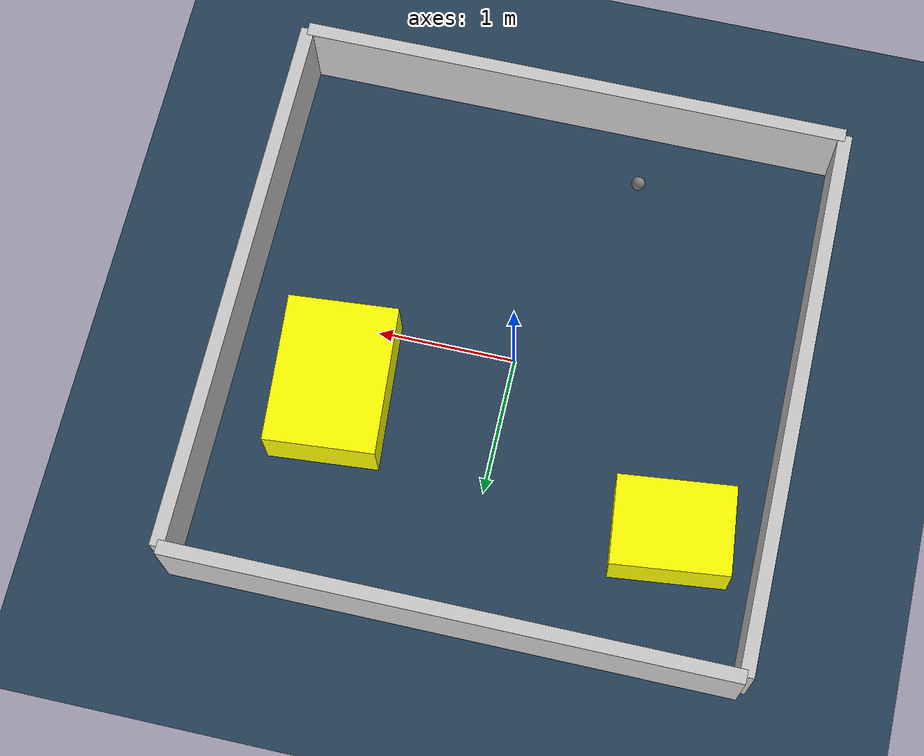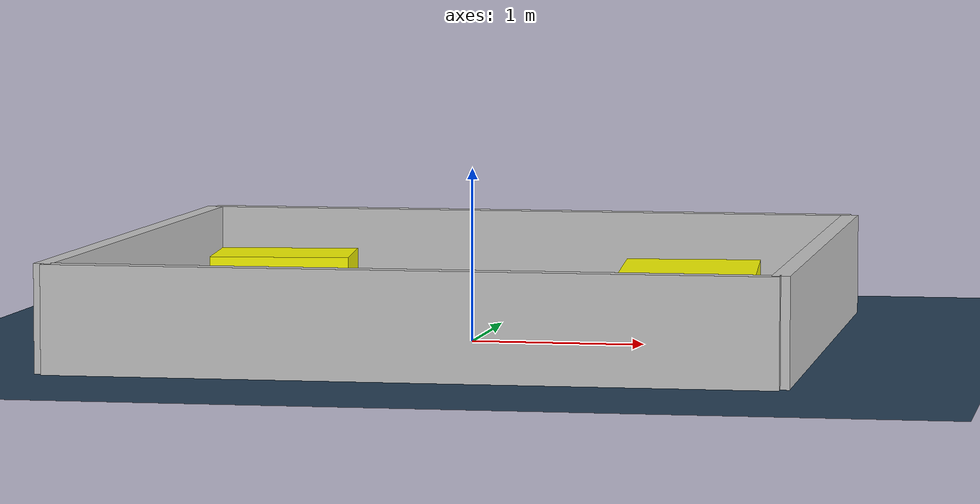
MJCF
<?xml version="1.0" ?>
<mujoco model="generated_environment">
  <option timestep="0.01" integrator="RK4" cone="elliptic"/>
  <default>
    <geom density="1"/>
  </default>
  <asset>
    <texture builtin="gradient" height="3072" rgb1="0.3 0.5 0.7" rgb2="0 0 0" type="skybox" width="512"/>
    <texture builtin="checker" height="300" mark="edge" markrgb="0.8 0.8 0.8" name="groundplane" rgb1="0.2 0.3 0.4" rgb2="0.1 0.2 0.3" type="2d" width="300"/>
    <material name="groundplane" reflectance="0.2" texrepeat="5 5" texture="groundplane" texuniform="true"/>
    <material name="robot" rgba="0.0 1.0 0.0 1"/>
  </asset>
  <worldbody>
    <light dir="0 0 -1" directional="true" pos="0 0 1.5"/>
    <geom condim="4" friction="1.0 0.005 0.001" material="groundplane" name="floor" size="0 0 0.05" type="plane"/>
    <body name="walls">
      <geom name="wall_1" condim="4" pos="-2.0 0.0 0.3" rgba="0.800000011920929 0.800000011920929 0.800000011920929 1.0" size="0.05 2.0 0.3" type="box"/>
      <geom name="wall_2" condim="4" pos="2.0 0.0 0.3" rgba="0.800000011920929 0.800000011920929 0.800000011920929 1.0" size="0.05 2.0 0.3" type="box"/>
      <geom name="wall_3" condim="4" pos="0.0 -2.0 0.3" rgba="0.800000011920929 0.800000011920929 0.800000011920929 1.0" size="2.0 0.05 0.3" type="box"/>
      <geom name="wall_4" condim="4" pos="0.0 2.0 0.3" rgba="0.800000011920929 0.800000011920929 0.800000011920929 1.0" size="2.0 0.05 0.3" type="box"/>
    </body>
    <body name="robot">
      <joint name="joint_x" type="slide" pos="0 0 0" axis="1 0 0"/>
      <joint name="joint_y" type="slide" pos="0 0 0" axis="0 1 0"/>
      <geom name="robot" type="sphere" pos="-0.6040427441743548 -1.4884570391404586 0.2" size="0.05" mass="5." friction="1.0 0.005 0.0001" condim="4"/>
      <site name="sensor_ball"/>
    </body>
    <body name="obstacle_1_movable">
      <geom name="obstacle_1_movable" condim="4" pos="-1.3467547174778538 1.0452369481889963 0.2" euler="0 0 186.34119341291594" friction="1.0 0.005 0.001" rgba="1 1 0 1" size="0.416842597196777 0.3182156988395684 0.2" type="box" mass="0.1"/>
      <joint type="free"/>
    </body>
    <body name="obstacle_2_movable">
      <geom name="obstacle_2_movable" condim="4" pos="1.2010238891353358 0.4991198285521645 0.2" euler="0 0 94.77506312045026" friction="1.0 0.005 0.001" rgba="1 1 0 1" size="0.5410793979122083 0.39797778741703865 0.2" type="box" mass="0.1"/>
      <joint type="free"/>
    </body>
  </worldbody>
  <actuator>
    <motor name="actuator_x" joint="joint_x" gear="1" ctrlrange="-1 1"/>
    <motor name="actuator_y" joint="joint_y" gear="1" ctrlrange="-1 1"/>
  </actuator>
</mujoco>
